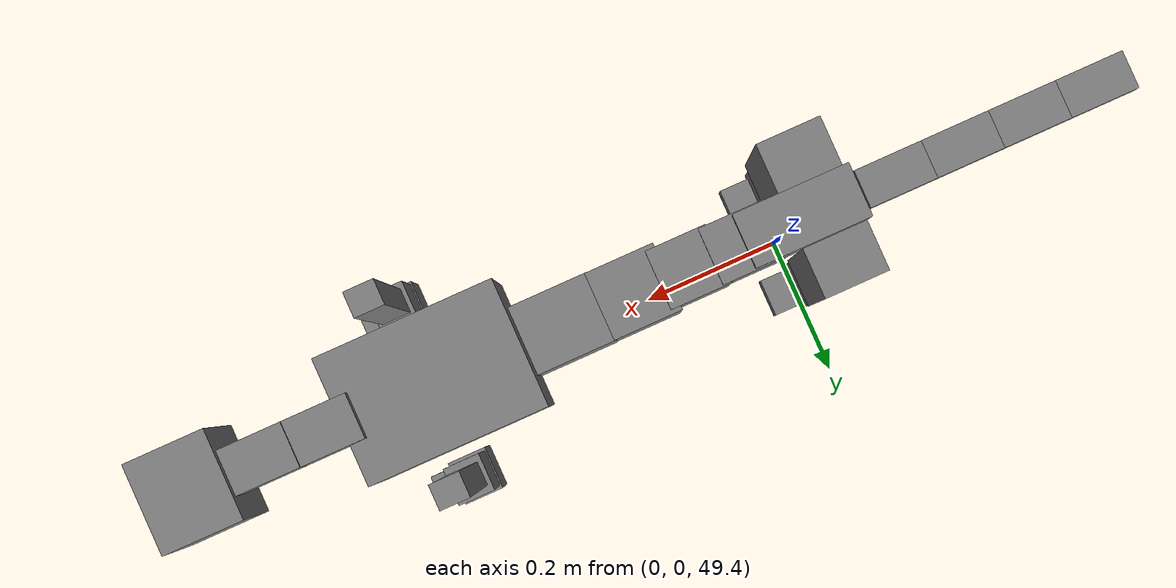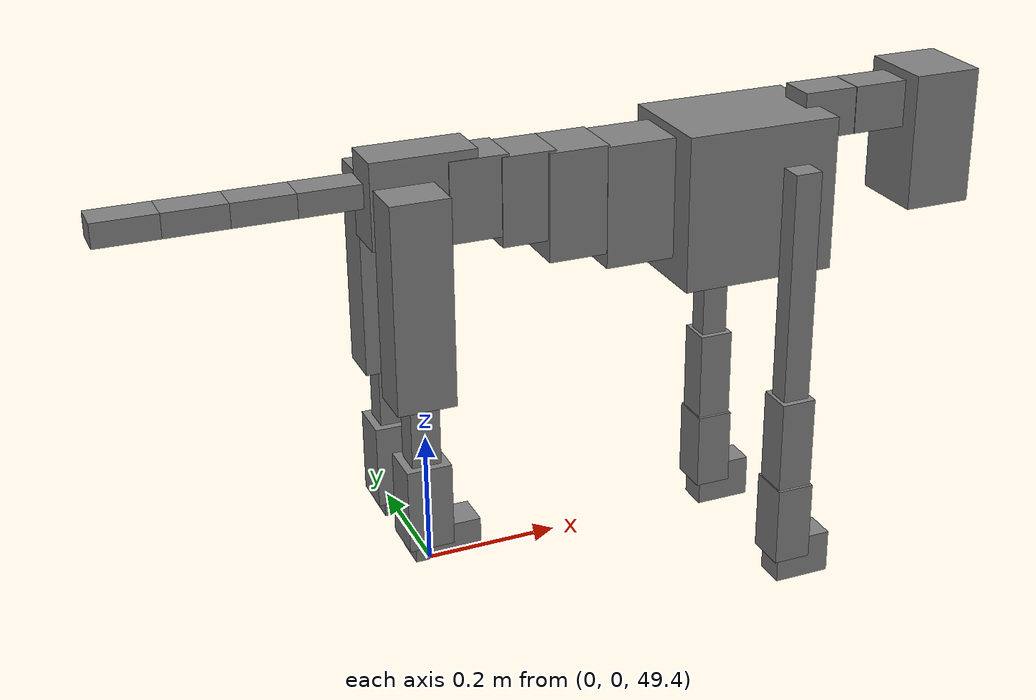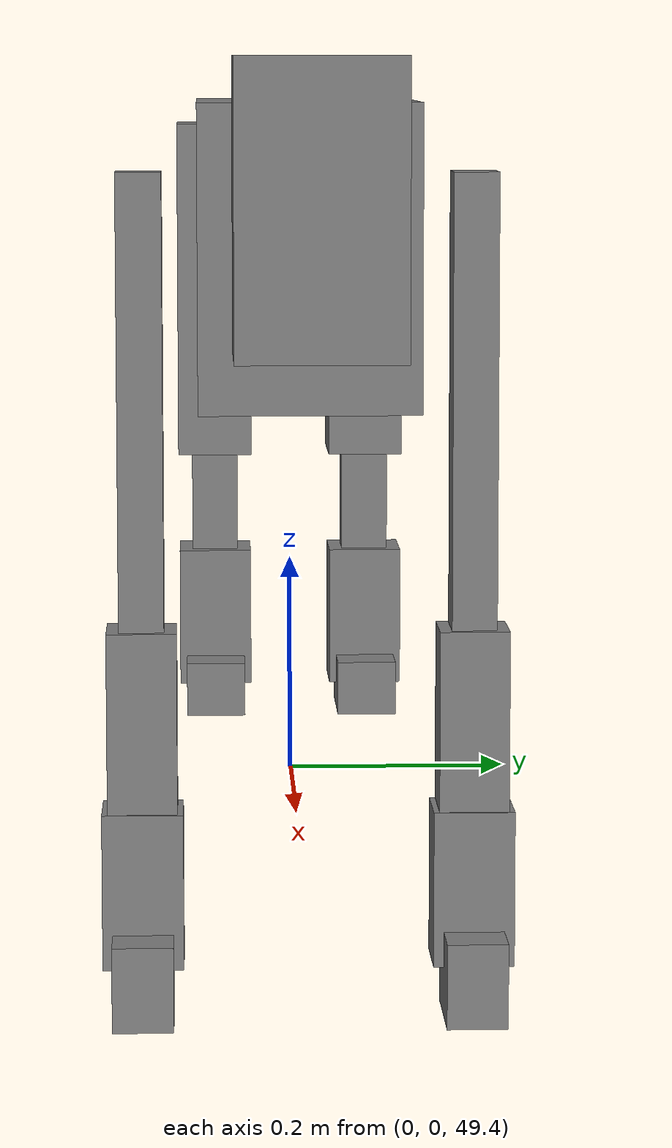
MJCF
<mujoco model="dog">

    <default>
        <joint armature="0.02" stiffness="1" damping="0.2" limited="true"/>
        <geom condim="3" friction="1 0.05 0.05" margin="0.01"/>
        <motor ctrllimited="true" ctrlrange="-1.0 1.0" forcelimited="true" gear="50"/>
    </default>

    <compiler inertiafromgeom="true" angle="radian"/>

    <option timestep="0.016" iterations="50" tolerance="1e-10" solver="Newton" jacobian="dense" cone="pyramidal"/>

    <size nconmax="20000" njmax="60000" nstack="5000000"/>
    <visual>
        <map force="0.1" zfar="30"/>
        <rgba haze="0.15 0.25 0.35 1"/>
        <quality shadowsize="2048"/>
        <global offwidth="800" offheight="800"/>
    </visual>

    <asset>
        <texture type="skybox" builtin="gradient" rgb1="0.3 0.5 0.7" rgb2="0 0 0" width="512" height="512"/>
        <texture name="texplane" type="2d" builtin="checker" rgb1=".2 .3 .4" rgb2=".1 0.15 0.2" width="512" height="512"
                 mark="cross" markrgb=".8 .8 .8"/>
        <texture name="texgeom" type="cube" builtin="flat" mark="cross" width="127" height="1278" rgb1="0.8 0.6 0.4"
                 rgb2="0.8 0.6 0.4" markrgb="1 1 1" random="0.01"/>

        <material name="matplane" reflectance="0.3" texture="texplane" texrepeat="1 1" texuniform="true"/>
        <material name="matgeom" texture="texgeom" texuniform="true" rgba="0.8 0.6 .4 1"/>
    </asset>

    <worldbody>
        <geom name="floor" pos="0 0 0" size="0 0 .25" type="plane" material="matplane" condim="3"/>

        <light directional="false" diffuse=".2 .2 .2" specular="0 0 0" pos="0 0 5" dir="0 0 -1" castshadow="false"/>
        <light mode="targetbodycom" target="torso" directional="false" diffuse=".8 .8 .8" specular="0.3 0.3 0.3"
               pos="0 0 4.0" dir="0 0 -1"/>

        <body name="root" pos="0 0 50">
            <freejoint name="root_1"/>
            <geom type="box" pos="0 0 -0.02" size="0.0774  0.0358  0.063" density="2030"/>

            <body name="spine1" pos="0.054 0 0">
                <joint name="spine1_y" axis="0 1 0" range="0 0.7" limited="true"/>
                <geom type="box" pos="0.02375 0 -0.03" size="0.04375  0.0375  0.05985" density="2030"/>

                <body name="spine2" pos="0.0612 0 0">
                    <joint name="spine2_y" axis="0 1 0" range="-0.15 0.15" limited="true"/>
                    <geom type="box" pos="0.03555  0  -0.04" size="0.04055  0.039  0.06615" density="2030"/>

                    <body name="spine3" pos="0.0730 0 0">
                        <joint name="spine3_y" axis="0 1 0" range="-0.15 0.15" limited="true"/>
                        <geom type="box" pos="0.03555  0  -0.057" size="0.04555  0.0445  0.081" density="2030"/>

                        <body name="spine4" pos="0.0780 0 0">
                            <joint name="spine4_y" axis="0 1 0" range="-0.15 0.15" limited="true"/>
                            <geom type="box" pos="0.05265  0  -0.07" size="0.05265  0.045  0.09135" density="2030"/>

                            <body name="torso" pos="0.1082 0 0">
                                <joint name="torso_y" axis="0 1 0" range="-0.15 0.15" limited="true"/>
                                <geom type="box" pos="0.11925  0  -0.085" size="0.11925  0.085  0.11745"
                                      density="2030"/>

                                <body name="neck1" pos="0.2160  0   0.0180">
                                    <joint name="neck1_y" axis="0 1 0" range="-1.2  -1" limited="true"/>
                                    <geom type="box" pos="0.0423  0  0" size="0.0423  0.03  0.036" density="2325"/>

                                    <body name="neck2" pos="0.0853  0  0">
                                        <joint name="neck2_y" axis="0 1 0" range="0.1  0" limited="true"/>
                                        <geom type="box" pos="0.0423  0  0" size="0.0423  0.03  0.036" density="2325"/>

                                        <body name="head" pos="0.0853  0  0">
                                            <joint name="head_y" axis="0 1 0" range="-0.3  -0.2" limited="true"/>
                                            <geom type="box" pos="0.0531  0  -0.055" size="0.0531  0.06  0.1044"
                                                  density="4030"/>

                                        </body>
                                    </body>
                                </body>

                                <body name="front_shoulder" pos="0.156  0   -0.0480">
                                    <joint name="front_shoulder_y" axis="0 1 0" range="-1 1.5" limited="true"/>
                                    <geom type="box" pos="0 0.13 -0.1650" size="0.0207  0.0177  0.1916" density="1158"/>
                                    <geom type="box" pos="0 -0.13 -0.1650" size="0.0207  0.0177  0.1916"
                                          density="1158"/>

                                    <body name="front_elbow" pos="0  0  -0.3300">
                                        <joint name="front_elbow_y" axis="0 1 0" range="-2 0" limited="true"/>
                                        <geom type="box" pos="0 0.13 -0.0781" size="0.0268  0.0274  0.0781"
                                              density="1081"/>
                                        <geom type="box" pos="0 -0.13 -0.0781" size="0.0268  0.0274  0.0781"
                                              density="1081"/>

                                        <body name="front_wrist" pos="0  0  -0.1562">
                                            <joint name="front_wrist_y" axis="0 1 0" range="-0.2 0" limited="true"/>
                                            <geom type="box" pos="0 0.13 -0.0488" size="0.0287  0.0319  0.0620"
                                                  density="1664"/>
                                            <geom type="box" pos="0 -0.13 -0.0488" size="0.0287  0.0319  0.0620"
                                                  density="1664"/>

                                            <body name="front_finger_end" pos="0  0  -0.0976">
                                                <joint name="front_finger_y" axis="0 1 0" range="-0.4 1"
                                                       limited="true"/>
                                                <geom type="box" pos="0.0239  0.13  -0.0188"
                                                      size="0.0439  0.0239  0.0338" density="1515"/>
                                                <geom type="box" pos="0.0239  -0.13  -0.0188"
                                                      size="0.0439  0.0239  0.0338" density="1515"/>

                                            </body>

                                        </body>
                                    </body>
                                </body>

                            </body>
                        </body>
                    </body>
                </body>
            </body>

            <body name="back_hip" pos="-0.03 0 -0.018">
                <joint name="back_hip_y" axis="0 1 0" range="-1.5 0.3" limited="true"/>
                <geom type="box" pos="0 0.07 -0.1304" size="0.0432  0.0338  0.1532" density="1154"/>
                <geom type="box" pos="0 -0.07 -0.1304" size="0.0432  0.0338  0.1532" density="1154"/>

                <body name="back_knee" pos="0  0  -0.2607">
                    <joint name="back_knee_y" axis="0 1 0" range="0 2.8" limited="true"/>
                    <geom type="box" pos="0 0.07 -0.0626" size="0.0214  0.0211  0.0782" density="1227"/>
                    <geom type="box" pos="0 -0.07 -0.0626" size="0.0214  0.0211  0.0782" density="1227"/>

                    <body name="back_ankle" pos="0  0  -0.1253">
                        <joint name="back_ankle_y" axis="0 1 0" range="-2.2 0" limited="true"/>
                        <geom type="box" pos="0 0.07 -0.0517" size="0.0331  0.0331  0.0630" density="1284"/>
                        <geom type="box" pos="0 -0.07 -0.0517" size="0.0331  0.0331  0.0630" density="1284"/>

                        <body name="back_toe_end" pos="0  0  -0.1035">
                            <joint name="back_toe_y" axis="0 1 0" range="-0.4 1" limited="true"/>
                            <geom type="box" pos="0.0268  0.07  -0.0095" size="0.0492  0.0268  0.0245" density="1515"/>
                            <geom type="box" pos="0.0268  -0.07  -0.0095" size="0.0492  0.0268  0.0245" density="1515"/>

                        </body>
                    </body>
                </body>
            </body>

            <body name="tail1" pos="-0.074 0 -0.006">
                <joint name="tail1_y" axis="0 1 0" range="-0.2 0.2" limited="true"/>
                <geom type="box" pos="-0.0536  0  0" size="0.045  0.025  0.0175" density="1587"/>

                <body name="tail2" pos="-0.09 0 0">
                    <joint name="tail2_y" axis="0 1 0" range="-0.2 0.2" limited="true"/>
                    <geom type="box" pos="-0.0536  0  0" size="0.045  0.025  0.0175" density="1587"/>

                    <body name="tail3" pos="-0.09 0 0">
                        <joint name="tail3_y" axis="0 1 0" range="-0.2 0.2" limited="true"/>
                        <geom type="box" pos="-0.0536  0  0" size="0.045  0.025  0.0175" density="1587"/>

                        <body name="tail4" pos="-0.09 0 0">
                            <joint name="tail4_y" axis="0 1 0" range="-0.2 0.2" limited="true"/>
                            <geom type="box" pos="-0.0536  0  0" size="0.045  0.025  0.0175" density="1587"/>

                        </body>
                    </body>
                </body>
            </body>
        </body>
    </worldbody>

    <actuator>
        <motor joint="spine1_y" forcerange="-150 150     "/>
        <motor joint="spine2_y" forcerange="-150 150     "/>
        <motor joint="spine3_y" forcerange="-150 150     "/>
        <motor joint="spine4_y" forcerange="-150 150     "/>
        <motor joint="torso_y" forcerange="-150 150     "/>
        <motor joint="neck1_y" forcerange="-100 100       "/>
        <motor joint="neck2_y" forcerange="-100 100       "/>
        <motor joint="head_y" forcerange="-150 150       "/>
        <motor joint="front_shoulder_y" forcerange="-113.46 104.26"/>
        <motor joint="front_elbow_y" forcerange="-148.59 150.33"/>
        <motor joint="front_wrist_y" forcerange="-115.71 139.44"/>
        <motor joint="front_finger_y" forcerange="-57.46 30.18"/>
        <motor joint="back_hip_y" forcerange="-275.54 375.79"/>
        <motor joint="back_knee_y" forcerange="-247.75 259.08"/>
        <motor joint="back_angle_y" forcerange="-206.92 222.35"/>
        <motor joint="back_toe_y" forcerange="-55.49 79.16"/>
        <motor joint="tail1_y" forcerange="-50 50     "/>
        <motor joint="tail2_y" forcerange="-50 50     "/>
        <motor joint="tail3_y" forcerange="-50 50     "/>
        <motor joint="tail4_y" forcerange="-50 50     "/>
    </actuator>
</mujoco>
